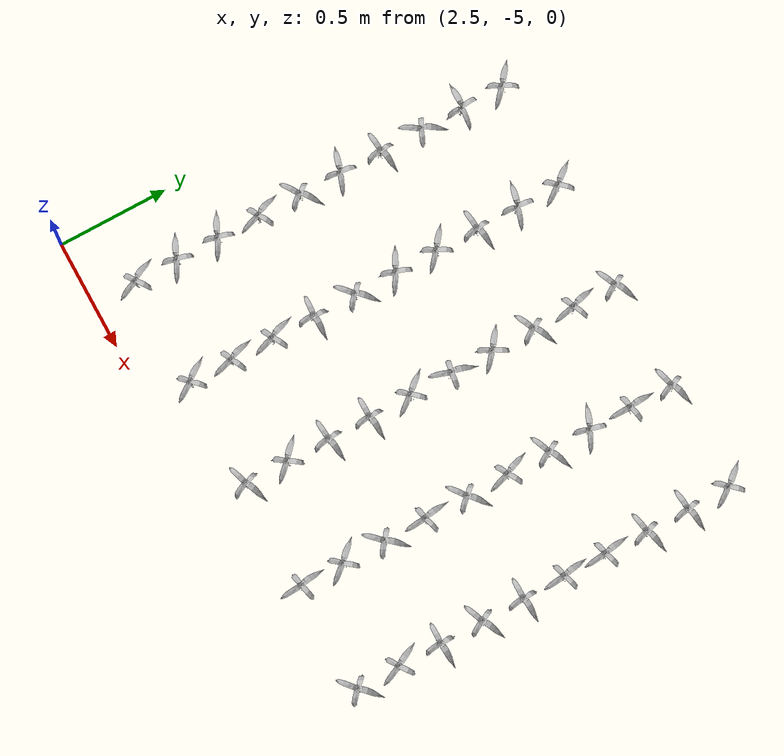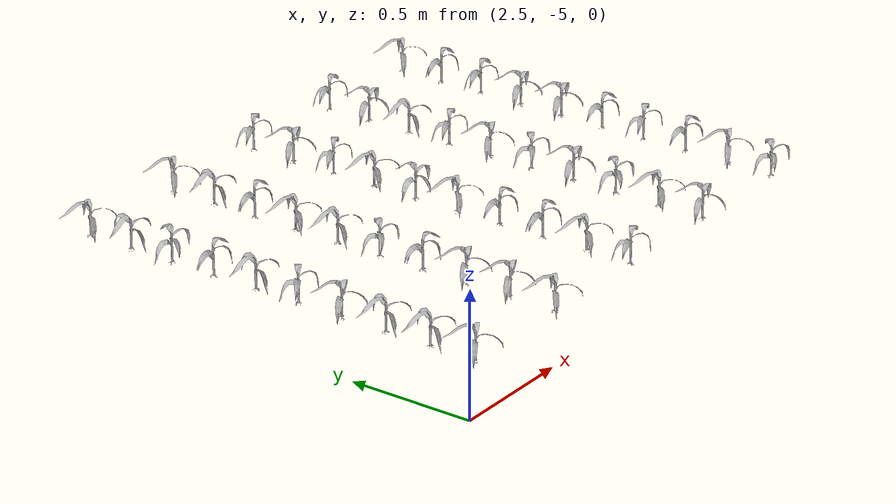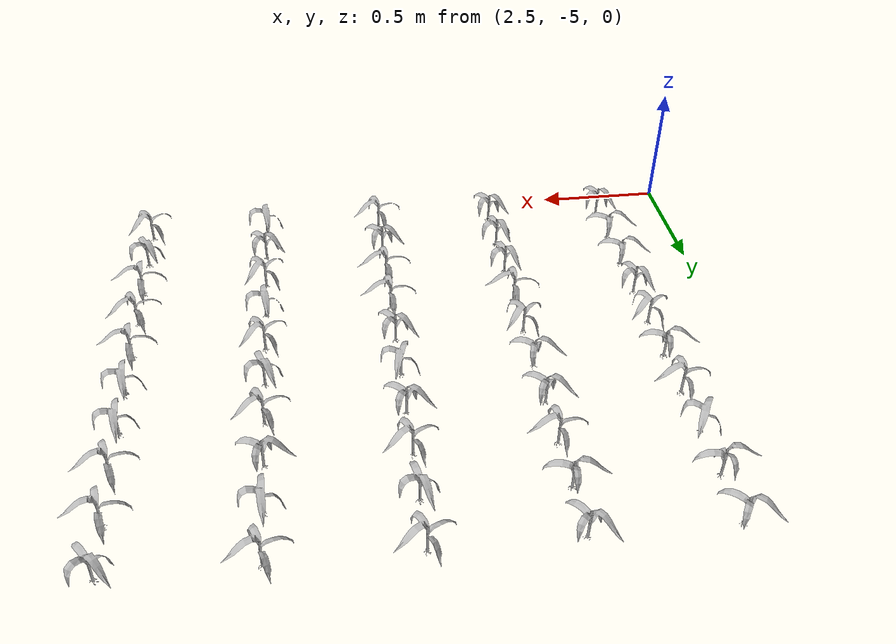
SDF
<sdf version="1.7">
 <world name="default">
  <model name="maize_2.816066532335432_-4.8">
   <static>1</static>
   <link name="link">
    <inertial>
     <mass>0.2</mass>
     <inertia>
      <ixx>0.166667</ixx>
      <ixy>0</ixy>
      <ixz>0</ixz>
      <iyy>0.166667</iyy>
      <iyz>0</iyz>
      <izz>0.166667</izz>
     </inertia>
    </inertial>
    <collision name="collision">
     <geometry><mesh><uri>model://corn_3/meshes/corn.dae</uri><scale>0.25 0.25 0.25</scale></mesh></geometry>
     <surface>
      <friction><ode><mu>0</mu><mu2>0</mu2></ode></friction>
      <contact><ode><kp>0</kp><kd>0</kd><max_vel>0</max_vel><min_depth>0.002</min_depth></ode></contact>
     </surface>
    </collision>
    <visual name="visual">
     <geometry><mesh><uri>model://corn_3/meshes/corn.dae</uri><scale>0.25 0.25 0.25</scale></mesh></geometry>
    </visual>
    <velocity_decay><linear>0</linear><angular>0</angular></velocity_decay>
   </link>
   <pose>2.81607 -4.8 0.05 0 -0 2.08674</pose>
  </model>
  <model name="maize_2.816066532335432_-4.6049999999999995">
   <static>1</static>
   <link name="link">
    <inertial>
     <mass>0.2</mass>
     <inertia>
      <ixx>0.166667</ixx>
      <ixy>0</ixy>
      <ixz>0</ixz>
      <iyy>0.166667</iyy>
      <iyz>0</iyz>
      <izz>0.166667</izz>
     </inertia>
    </inertial>
    <collision name="collision">
     <geometry><mesh><uri>model://corn_3/meshes/corn.dae</uri><scale>0.25 0.25 0.25</scale></mesh></geometry>
     <surface>
      <friction><ode><mu>0</mu><mu2>0</mu2></ode></friction>
      <contact><ode><kp>0</kp><kd>0</kd><max_vel>0</max_vel><min_depth>0.002</min_depth></ode></contact>
     </surface>
    </collision>
    <visual name="visual">
     <geometry><mesh><uri>model://corn_3/meshes/corn.dae</uri><scale>0.25 0.25 0.25</scale></mesh></geometry>
    </visual>
    <velocity_decay><linear>0</linear><angular>0</angular></velocity_decay>
   </link>
   <pose>2.81607 -4.605 0.05 0 -0 2.75773</pose>
  </model>
  <model name="maize_2.816066532335432_-4.41">
   <static>1</static>
   <link name="link">
    <inertial>
     <mass>0.2</mass>
     <inertia>
      <ixx>0.166667</ixx>
      <ixy>0</ixy>
      <ixz>0</ixz>
      <iyy>0.166667</iyy>
      <iyz>0</iyz>
      <izz>0.166667</izz>
     </inertia>
    </inertial>
    <collision name="collision">
     <geometry><mesh><uri>model://corn_3/meshes/corn.dae</uri><scale>0.25 0.25 0.25</scale></mesh></geometry>
     <surface>
      <friction><ode><mu>0</mu><mu2>0</mu2></ode></friction>
      <contact><ode><kp>0</kp><kd>0</kd><max_vel>0</max_vel><min_depth>0.002</min_depth></ode></contact>
     </surface>
    </collision>
    <visual name="visual">
     <geometry><mesh><uri>model://corn_3/meshes/corn.dae</uri><scale>0.25 0.25 0.25</scale></mesh></geometry>
    </visual>
    <velocity_decay><linear>0</linear><angular>0</angular></velocity_decay>
   </link>
   <pose>2.81607 -4.41 0.05 0 -0 2.74341</pose>
  </model>
  <model name="maize_2.816066532335432_-4.215">
   <static>1</static>
   <link name="link">
    <inertial>
     <mass>0.2</mass>
     <inertia>
      <ixx>0.166667</ixx>
      <ixy>0</ixy>
      <ixz>0</ixz>
      <iyy>0.166667</iyy>
      <iyz>0</iyz>
      <izz>0.166667</izz>
     </inertia>
    </inertial>
    <collision name="collision">
     <geometry><mesh><uri>model://corn_3/meshes/corn.dae</uri><scale>0.25 0.25 0.25</scale></mesh></geometry>
     <surface>
      <friction><ode><mu>0</mu><mu2>0</mu2></ode></friction>
      <contact><ode><kp>0</kp><kd>0</kd><max_vel>0</max_vel><min_depth>0.002</min_depth></ode></contact>
     </surface>
    </collision>
    <visual name="visual">
     <geometry><mesh><uri>model://corn_3/meshes/corn.dae</uri><scale>0.25 0.25 0.25</scale></mesh></geometry>
    </visual>
    <velocity_decay><linear>0</linear><angular>0</angular></velocity_decay>
   </link>
   <pose>2.81607 -4.215 0.05 0 -0 1.98575</pose>
  </model>
  <model name="maize_2.816066532335432_-4.02">
   <static>1</static>
   <link name="link">
    <inertial>
     <mass>0.2</mass>
     <inertia>
      <ixx>0.166667</ixx>
      <ixy>0</ixy>
      <ixz>0</ixz>
      <iyy>0.166667</iyy>
      <iyz>0</iyz>
      <izz>0.166667</izz>
     </inertia>
    </inertial>
    <collision name="collision">
     <geometry><mesh><uri>model://corn_3/meshes/corn.dae</uri><scale>0.25 0.25 0.25</scale></mesh></geometry>
     <surface>
      <friction><ode><mu>0</mu><mu2>0</mu2></ode></friction>
      <contact><ode><kp>0</kp><kd>0</kd><max_vel>0</max_vel><min_depth>0.002</min_depth></ode></contact>
     </surface>
    </collision>
    <visual name="visual">
     <geometry><mesh><uri>model://corn_3/meshes/corn.dae</uri><scale>0.25 0.25 0.25</scale></mesh></geometry>
    </visual>
    <velocity_decay><linear>0</linear><angular>0</angular></velocity_decay>
   </link>
   <pose>2.81607 -4.02 0.05 0 -0 0.686154</pose>
  </model>
  <model name="maize_2.816066532335432_-3.8249999999999997">
   <static>1</static>
   <link name="link">
    <inertial>
     <mass>0.2</mass>
     <inertia>
      <ixx>0.166667</ixx>
      <ixy>0</ixy>
      <ixz>0</ixz>
      <iyy>0.166667</iyy>
      <iyz>0</iyz>
      <izz>0.166667</izz>
     </inertia>
    </inertial>
    <collision name="collision">
     <geometry><mesh><uri>model://corn_3/meshes/corn.dae</uri><scale>0.25 0.25 0.25</scale></mesh></geometry>
     <surface>
      <friction><ode><mu>0</mu><mu2>0</mu2></ode></friction>
      <contact><ode><kp>0</kp><kd>0</kd><max_vel>0</max_vel><min_depth>0.002</min_depth></ode></contact>
     </surface>
    </collision>
    <visual name="visual">
     <geometry><mesh><uri>model://corn_3/meshes/corn.dae</uri><scale>0.25 0.25 0.25</scale></mesh></geometry>
    </visual>
    <velocity_decay><linear>0</linear><angular>0</angular></velocity_decay>
   </link>
   <pose>2.81607 -3.825 0.05 0 -0 2.88221</pose>
  </model>
  <model name="maize_2.816066532335432_-3.63">
   <static>1</static>
   <link name="link">
    <inertial>
     <mass>0.2</mass>
     <inertia>
      <ixx>0.166667</ixx>
      <ixy>0</ixy>
      <ixz>0</ixz>
      <iyy>0.166667</iyy>
      <iyz>0</iyz>
      <izz>0.166667</izz>
     </inertia>
    </inertial>
    <collision name="collision">
     <geometry><mesh><uri>model://corn_3/meshes/corn.dae</uri><scale>0.25 0.25 0.25</scale></mesh></geometry>
     <surface>
      <friction><ode><mu>0</mu><mu2>0</mu2></ode></friction>
      <contact><ode><kp>0</kp><kd>0</kd><max_vel>0</max_vel><min_depth>0.002</min_depth></ode></contact>
     </surface>
    </collision>
    <visual name="visual">
     <geometry><mesh><uri>model://corn_3/meshes/corn.dae</uri><scale>0.25 0.25 0.25</scale></mesh></geometry>
    </visual>
    <velocity_decay><linear>0</linear><angular>0</angular></velocity_decay>
   </link>
   <pose>2.81607 -3.63 0.05 0 -0 0.198833</pose>
  </model>
  <model name="maize_2.816066532335432_-3.4349999999999996">
   <static>1</static>
   <link name="link">
    <inertial>
     <mass>0.2</mass>
     <inertia>
      <ixx>0.166667</ixx>
      <ixy>0</ixy>
      <ixz>0</ixz>
      <iyy>0.166667</iyy>
      <iyz>0</iyz>
      <izz>0.166667</izz>
     </inertia>
    </inertial>
    <collision name="collision">
     <geometry><mesh><uri>model://corn_3/meshes/corn.dae</uri><scale>0.25 0.25 0.25</scale></mesh></geometry>
     <surface>
      <friction><ode><mu>0</mu><mu2>0</mu2></ode></friction>
      <contact><ode><kp>0</kp><kd>0</kd><max_vel>0</max_vel><min_depth>0.002</min_depth></ode></contact>
     </surface>
    </collision>
    <visual name="visual">
     <geometry><mesh><uri>model://corn_3/meshes/corn.dae</uri><scale>0.25 0.25 0.25</scale></mesh></geometry>
    </visual>
    <velocity_decay><linear>0</linear><angular>0</angular></velocity_decay>
   </link>
   <pose>2.81607 -3.435 0.05 0 -0 1.08971</pose>
  </model>
  <model name="maize_2.816066532335432_-3.2399999999999998">
   <static>1</static>
   <link name="link">
    <inertial>
     <mass>0.2</mass>
     <inertia>
      <ixx>0.166667</ixx>
      <ixy>0</ixy>
      <ixz>0</ixz>
      <iyy>0.166667</iyy>
      <iyz>0</iyz>
      <izz>0.166667</izz>
     </inertia>
    </inertial>
    <collision name="collision">
     <geometry><mesh><uri>model://corn_3/meshes/corn.dae</uri><scale>0.25 0.25 0.25</scale></mesh></geometry>
     <surface>
      <friction><ode><mu>0</mu><mu2>0</mu2></ode></friction>
      <contact><ode><kp>0</kp><kd>0</kd><max_vel>0</max_vel><min_depth>0.002</min_depth></ode></contact>
     </surface>
    </collision>
    <visual name="visual">
     <geometry><mesh><uri>model://corn_3/meshes/corn.dae</uri><scale>0.25 0.25 0.25</scale></mesh></geometry>
    </visual>
    <velocity_decay><linear>0</linear><angular>0</angular></velocity_decay>
   </link>
   <pose>2.81607 -3.24 0.05 0 -0 3.12822</pose>
  </model>
  <model name="maize_2.816066532335432_-3.045">
   <static>1</static>
   <link name="link">
    <inertial>
     <mass>0.2</mass>
     <inertia>
      <ixx>0.166667</ixx>
      <ixy>0</ixy>
      <ixz>0</ixz>
      <iyy>0.166667</iyy>
      <iyz>0</iyz>
      <izz>0.166667</izz>
     </inertia>
    </inertial>
    <collision name="collision">
     <geometry><mesh><uri>model://corn_3/meshes/corn.dae</uri><scale>0.25 0.25 0.25</scale></mesh></geometry>
     <surface>
      <friction><ode><mu>0</mu><mu2>0</mu2></ode></friction>
      <contact><ode><kp>0</kp><kd>0</kd><max_vel>0</max_vel><min_depth>0.002</min_depth></ode></contact>
     </surface>
    </collision>
    <visual name="visual">
     <geometry><mesh><uri>model://corn_3/meshes/corn.dae</uri><scale>0.25 0.25 0.25</scale></mesh></geometry>
    </visual>
    <velocity_decay><linear>0</linear><angular>0</angular></velocity_decay>
   </link>
   <pose>2.81607 -3.045 0.05 0 -0 2.49218</pose>
  </model>
  <model name="maize_3.304538114598593_-4.8">
   <static>1</static>
   <link name="link">
    <inertial>
     <mass>0.2</mass>
     <inertia>
      <ixx>0.166667</ixx>
      <ixy>0</ixy>
      <ixz>0</ixz>
      <iyy>0.166667</iyy>
      <iyz>0</iyz>
      <izz>0.166667</izz>
     </inertia>
    </inertial>
    <collision name="collision">
     <geometry><mesh><uri>model://corn_3/meshes/corn.dae</uri><scale>0.25 0.25 0.25</scale></mesh></geometry>
     <surface>
      <friction><ode><mu>0</mu><mu2>0</mu2></ode></friction>
      <contact><ode><kp>0</kp><kd>0</kd><max_vel>0</max_vel><min_depth>0.002</min_depth></ode></contact>
     </surface>
    </collision>
    <visual name="visual">
     <geometry><mesh><uri>model://corn_3/meshes/corn.dae</uri><scale>0.25 0.25 0.25</scale></mesh></geometry>
    </visual>
    <velocity_decay><linear>0</linear><angular>0</angular></velocity_decay>
   </link>
   <pose>3.30454 -4.8 0.05 0 -0 2.25015</pose>
  </model>
  <model name="maize_3.304538114598593_-4.6049999999999995">
   <static>1</static>
   <link name="link">
    <inertial>
     <mass>0.2</mass>
     <inertia>
      <ixx>0.166667</ixx>
      <ixy>0</ixy>
      <ixz>0</ixz>
      <iyy>0.166667</iyy>
      <iyz>0</iyz>
      <izz>0.166667</izz>
     </inertia>
    </inertial>
    <collision name="collision">
     <geometry><mesh><uri>model://corn_3/meshes/corn.dae</uri><scale>0.25 0.25 0.25</scale></mesh></geometry>
     <surface>
      <friction><ode><mu>0</mu><mu2>0</mu2></ode></friction>
      <contact><ode><kp>0</kp><kd>0</kd><max_vel>0</max_vel><min_depth>0.002</min_depth></ode></contact>
     </surface>
    </collision>
    <visual name="visual">
     <geometry><mesh><uri>model://corn_3/meshes/corn.dae</uri><scale>0.25 0.25 0.25</scale></mesh></geometry>
    </visual>
    <velocity_decay><linear>0</linear><angular>0</angular></velocity_decay>
   </link>
   <pose>3.30454 -4.605 0.05 0 -0 1.93192</pose>
  </model>
  <model name="maize_3.304538114598593_-4.41">
   <static>1</static>
   <link name="link">
    <inertial>
     <mass>0.2</mass>
     <inertia>
      <ixx>0.166667</ixx>
      <ixy>0</ixy>
      <ixz>0</ixz>
      <iyy>0.166667</iyy>
      <iyz>0</iyz>
      <izz>0.166667</izz>
     </inertia>
    </inertial>
    <collision name="collision">
     <geometry><mesh><uri>model://corn_3/meshes/corn.dae</uri><scale>0.25 0.25 0.25</scale></mesh></geometry>
     <surface>
      <friction><ode><mu>0</mu><mu2>0</mu2></ode></friction>
      <contact><ode><kp>0</kp><kd>0</kd><max_vel>0</max_vel><min_depth>0.002</min_depth></ode></contact>
     </surface>
    </collision>
    <visual name="visual">
     <geometry><mesh><uri>model://corn_3/meshes/corn.dae</uri><scale>0.25 0.25 0.25</scale></mesh></geometry>
    </visual>
    <velocity_decay><linear>0</linear><angular>0</angular></velocity_decay>
   </link>
   <pose>3.30454 -4.41 0.05 0 -0 1.9743</pose>
  </model>
  <model name="maize_3.304538114598593_-4.215">
   <static>1</static>
   <link name="link">
    <inertial>
     <mass>0.2</mass>
     <inertia>
      <ixx>0.166667</ixx>
      <ixy>0</ixy>
      <ixz>0</ixz>
      <iyy>0.166667</iyy>
      <iyz>0</iyz>
      <izz>0.166667</izz>
     </inertia>
    </inertial>
    <collision name="collision">
     <geometry><mesh><uri>model://corn_3/meshes/corn.dae</uri><scale>0.25 0.25 0.25</scale></mesh></geometry>
     <surface>
      <friction><ode><mu>0</mu><mu2>0</mu2></ode></friction>
      <contact><ode><kp>0</kp><kd>0</kd><max_vel>0</max_vel><min_depth>0.002</min_depth></ode></contact>
     </surface>
    </collision>
    <visual name="visual">
     <geometry><mesh><uri>model://corn_3/meshes/corn.dae</uri><scale>0.25 0.25 0.25</scale></mesh></geometry>
    </visual>
    <velocity_decay><linear>0</linear><angular>0</angular></velocity_decay>
   </link>
   <pose>3.30454 -4.215 0.05 0 -0 0.033462</pose>
  </model>
  <model name="maize_3.304538114598593_-4.02">
   <static>1</static>
   <link name="link">
    <inertial>
     <mass>0.2</mass>
     <inertia>
      <ixx>0.166667</ixx>
      <ixy>0</ixy>
      <ixz>0</ixz>
      <iyy>0.166667</iyy>
      <iyz>0</iyz>
      <izz>0.166667</izz>
     </inertia>
    </inertial>
    <collision name="collision">
     <geometry><mesh><uri>model://corn_3/meshes/corn.dae</uri><scale>0.25 0.25 0.25</scale></mesh></geometry>
     <surface>
      <friction><ode><mu>0</mu><mu2>0</mu2></ode></friction>
      <contact><ode><kp>0</kp><kd>0</kd><max_vel>0</max_vel><min_depth>0.002</min_depth></ode></contact>
     </surface>
    </collision>
    <visual name="visual">
     <geometry><mesh><uri>model://corn_3/meshes/corn.dae</uri><scale>0.25 0.25 0.25</scale></mesh></geometry>
    </visual>
    <velocity_decay><linear>0</linear><angular>0</angular></velocity_decay>
   </link>
   <pose>3.30454 -4.02 0.05 0 -0 0.816923</pose>
  </model>
  <model name="maize_3.304538114598593_-3.8249999999999997">
   <static>1</static>
   <link name="link">
    <inertial>
     <mass>0.2</mass>
     <inertia>
      <ixx>0.166667</ixx>
      <ixy>0</ixy>
      <ixz>0</ixz>
      <iyy>0.166667</iyy>
      <iyz>0</iyz>
      <izz>0.166667</izz>
     </inertia>
    </inertial>
    <collision name="collision">
     <geometry><mesh><uri>model://corn_3/meshes/corn.dae</uri><scale>0.25 0.25 0.25</scale></mesh></geometry>
     <surface>
      <friction><ode><mu>0</mu><mu2>0</mu2></ode></friction>
      <contact><ode><kp>0</kp><kd>0</kd><max_vel>0</max_vel><min_depth>0.002</min_depth></ode></contact>
     </surface>
    </collision>
    <visual name="visual">
     <geometry><mesh><uri>model://corn_3/meshes/corn.dae</uri><scale>0.25 0.25 0.25</scale></mesh></geometry>
    </visual>
    <velocity_decay><linear>0</linear><angular>0</angular></velocity_decay>
   </link>
   <pose>3.30454 -3.825 0.05 0 -0 2.69588</pose>
  </model>
  <model name="maize_3.304538114598593_-3.63">
   <static>1</static>
   <link name="link">
    <inertial>
     <mass>0.2</mass>
     <inertia>
      <ixx>0.166667</ixx>
      <ixy>0</ixy>
      <ixz>0</ixz>
      <iyy>0.166667</iyy>
      <iyz>0</iyz>
      <izz>0.166667</izz>
     </inertia>
    </inertial>
    <collision name="collision">
     <geometry><mesh><uri>model://corn_3/meshes/corn.dae</uri><scale>0.25 0.25 0.25</scale></mesh></geometry>
     <surface>
      <friction><ode><mu>0</mu><mu2>0</mu2></ode></friction>
      <contact><ode><kp>0</kp><kd>0</kd><max_vel>0</max_vel><min_depth>0.002</min_depth></ode></contact>
     </surface>
    </collision>
    <visual name="visual">
     <geometry><mesh><uri>model://corn_3/meshes/corn.dae</uri><scale>0.25 0.25 0.25</scale></mesh></geometry>
    </visual>
    <velocity_decay><linear>0</linear><angular>0</angular></velocity_decay>
   </link>
   <pose>3.30454 -3.63 0.05 0 -0 2.51524</pose>
  </model>
  <model name="maize_3.304538114598593_-3.4349999999999996">
   <static>1</static>
   <link name="link">
    <inertial>
     <mass>0.2</mass>
     <inertia>
      <ixx>0.166667</ixx>
      <ixy>0</ixy>
      <ixz>0</ixz>
      <iyy>0.166667</iyy>
      <iyz>0</iyz>
      <izz>0.166667</izz>
     </inertia>
    </inertial>
    <collision name="collision">
     <geometry><mesh><uri>model://corn_3/meshes/corn.dae</uri><scale>0.25 0.25 0.25</scale></mesh></geometry>
     <surface>
      <friction><ode><mu>0</mu><mu2>0</mu2></ode></friction>
      <contact><ode><kp>0</kp><kd>0</kd><max_vel>0</max_vel><min_depth>0.002</min_depth></ode></contact>
     </surface>
    </collision>
    <visual name="visual">
     <geometry><mesh><uri>model://corn_3/meshes/corn.dae</uri><scale>0.25 0.25 0.25</scale></mesh></geometry>
    </visual>
    <velocity_decay><linear>0</linear><angular>0</angular></velocity_decay>
   </link>
   <pose>3.30454 -3.435 0.05 0 -0 0.212777</pose>
  </model>
  <model name="maize_3.304538114598593_-3.2399999999999998">
   <static>1</static>
   <link name="link">
    <inertial>
     <mass>0.2</mass>
     <inertia>
      <ixx>0.166667</ixx>
      <ixy>0</ixy>
      <ixz>0</ixz>
      <iyy>0.166667</iyy>
      <iyz>0</iyz>
      <izz>0.166667</izz>
     </inertia>
    </inertial>
    <collision name="collision">
     <geometry><mesh><uri>model://corn_3/meshes/corn.dae</uri><scale>0.25 0.25 0.25</scale></mesh></geometry>
     <surface>
      <friction><ode><mu>0</mu><mu2>0</mu2></ode></friction>
      <contact><ode><kp>0</kp><kd>0</kd><max_vel>0</max_vel><min_depth>0.002</min_depth></ode></contact>
     </surface>
    </collision>
    <visual name="visual">
     <geometry><mesh><uri>model://corn_3/meshes/corn.dae</uri><scale>0.25 0.25 0.25</scale></mesh></geometry>
    </visual>
    <velocity_decay><linear>0</linear><angular>0</angular></velocity_decay>
   </link>
   <pose>3.30454 -3.24 0.05 0 -0 2.93704</pose>
  </model>
  <model name="maize_3.304538114598593_-3.045">
   <static>1</static>
   <link name="link">
    <inertial>
     <mass>0.2</mass>
     <inertia>
      <ixx>0.166667</ixx>
      <ixy>0</ixy>
      <ixz>0</ixz>
      <iyy>0.166667</iyy>
      <iyz>0</iyz>
      <izz>0.166667</izz>
     </inertia>
    </inertial>
    <collision name="collision">
     <geometry><mesh><uri>model://corn_3/meshes/corn.dae</uri><scale>0.25 0.25 0.25</scale></mesh></geometry>
     <surface>
      <friction><ode><mu>0</mu><mu2>0</mu2></ode></friction>
      <contact><ode><kp>0</kp><kd>0</kd><max_vel>0</max_vel><min_depth>0.002</min_depth></ode></contact>
     </surface>
    </collision>
    <visual name="visual">
     <geometry><mesh><uri>model://corn_3/meshes/corn.dae</uri><scale>0.25 0.25 0.25</scale></mesh></geometry>
    </visual>
    <velocity_decay><linear>0</linear><angular>0</angular></velocity_decay>
   </link>
   <pose>3.30454 -3.045 0.05 0 -0 2.28434</pose>
  </model>
  <model name="maize_3.792272817950934_-4.8">
   <static>1</static>
   <link name="link">
    <inertial>
     <mass>0.2</mass>
     <inertia>
      <ixx>0.166667</ixx>
      <ixy>0</ixy>
      <ixz>0</ixz>
      <iyy>0.166667</iyy>
      <iyz>0</iyz>
      <izz>0.166667</izz>
     </inertia>
    </inertial>
    <collision name="collision">
     <geometry><mesh><uri>model://corn_3/meshes/corn.dae</uri><scale>0.25 0.25 0.25</scale></mesh></geometry>
     <surface>
      <friction><ode><mu>0</mu><mu2>0</mu2></ode></friction>
      <contact><ode><kp>0</kp><kd>0</kd><max_vel>0</max_vel><min_depth>0.002</min_depth></ode></contact>
     </surface>
    </collision>
    <visual name="visual">
     <geometry><mesh><uri>model://corn_3/meshes/corn.dae</uri><scale>0.25 0.25 0.25</scale></mesh></geometry>
    </visual>
    <velocity_decay><linear>0</linear><angular>0</angular></velocity_decay>
   </link>
   <pose>3.79227 -4.8 0.05 0 -0 0.406199</pose>
  </model>
  <model name="maize_3.792272817950934_-4.6049999999999995">
   <static>1</static>
   <link name="link">
    <inertial>
     <mass>0.2</mass>
     <inertia>
      <ixx>0.166667</ixx>
      <ixy>0</ixy>
      <ixz>0</ixz>
      <iyy>0.166667</iyy>
      <iyz>0</iyz>
      <izz>0.166667</izz>
     </inertia>
    </inertial>
    <collision name="collision">
     <geometry><mesh><uri>model://corn_3/meshes/corn.dae</uri><scale>0.25 0.25 0.25</scale></mesh></geometry>
     <surface>
      <friction><ode><mu>0</mu><mu2>0</mu2></ode></friction>
      <contact><ode><kp>0</kp><kd>0</kd><max_vel>0</max_vel><min_depth>0.002</min_depth></ode></contact>
     </surface>
    </collision>
    <visual name="visual">
     <geometry><mesh><uri>model://corn_3/meshes/corn.dae</uri><scale>0.25 0.25 0.25</scale></mesh></geometry>
    </visual>
    <velocity_decay><linear>0</linear><angular>0</angular></velocity_decay>
   </link>
   <pose>3.79227 -4.605 0.05 0 -0 2.42902</pose>
  </model>
  <model name="maize_3.792272817950934_-4.41">
   <static>1</static>
   <link name="link">
    <inertial>
     <mass>0.2</mass>
     <inertia>
      <ixx>0.166667</ixx>
      <ixy>0</ixy>
      <ixz>0</ixz>
      <iyy>0.166667</iyy>
      <iyz>0</iyz>
      <izz>0.166667</izz>
     </inertia>
    </inertial>
    <collision name="collision">
     <geometry><mesh><uri>model://corn_3/meshes/corn.dae</uri><scale>0.25 0.25 0.25</scale></mesh></geometry>
     <surface>
      <friction><ode><mu>0</mu><mu2>0</mu2></ode></friction>
      <contact><ode><kp>0</kp><kd>0</kd><max_vel>0</max_vel><min_depth>0.002</min_depth></ode></contact>
     </surface>
    </collision>
    <visual name="visual">
     <geometry><mesh><uri>model://corn_3/meshes/corn.dae</uri><scale>0.25 0.25 0.25</scale></mesh></geometry>
    </visual>
    <velocity_decay><linear>0</linear><angular>0</angular></velocity_decay>
   </link>
   <pose>3.79227 -4.41 0.05 0 -0 0.1811</pose>
  </model>
  <model name="maize_3.792272817950934_-4.215">
   <static>1</static>
   <link name="link">
    <inertial>
     <mass>0.2</mass>
     <inertia>
      <ixx>0.166667</ixx>
      <ixy>0</ixy>
      <ixz>0</ixz>
      <iyy>0.166667</iyy>
      <iyz>0</iyz>
      <izz>0.166667</izz>
     </inertia>
    </inertial>
    <collision name="collision">
     <geometry><mesh><uri>model://corn_3/meshes/corn.dae</uri><scale>0.25 0.25 0.25</scale></mesh></geometry>
     <surface>
      <friction><ode><mu>0</mu><mu2>0</mu2></ode></friction>
      <contact><ode><kp>0</kp><kd>0</kd><max_vel>0</max_vel><min_depth>0.002</min_depth></ode></contact>
     </surface>
    </collision>
    <visual name="visual">
     <geometry><mesh><uri>model://corn_3/meshes/corn.dae</uri><scale>0.25 0.25 0.25</scale></mesh></geometry>
    </visual>
    <velocity_decay><linear>0</linear><angular>0</angular></velocity_decay>
   </link>
   <pose>3.79227 -4.215 0.05 0 -0 0.120847</pose>
  </model>
  <model name="maize_3.792272817950934_-4.02">
   <static>1</static>
   <link name="link">
    <inertial>
     <mass>0.2</mass>
     <inertia>
      <ixx>0.166667</ixx>
      <ixy>0</ixy>
      <ixz>0</ixz>
      <iyy>0.166667</iyy>
      <iyz>0</iyz>
      <izz>0.166667</izz>
     </inertia>
    </inertial>
    <collision name="collision">
     <geometry><mesh><uri>model://corn_3/meshes/corn.dae</uri><scale>0.25 0.25 0.25</scale></mesh></geometry>
     <surface>
      <friction><ode><mu>0</mu><mu2>0</mu2></ode></friction>
      <contact><ode><kp>0</kp><kd>0</kd><max_vel>0</max_vel><min_depth>0.002</min_depth></ode></contact>
     </surface>
    </collision>
    <visual name="visual">
     <geometry><mesh><uri>model://corn_3/meshes/corn.dae</uri><scale>0.25 0.25 0.25</scale></mesh></geometry>
    </visual>
    <velocity_decay><linear>0</linear><angular>0</angular></velocity_decay>
   </link>
   <pose>3.79227 -4.02 0.05 0 -0 2.31945</pose>
  </model>
  <model name="maize_3.792272817950934_-3.8249999999999997">
   <static>1</static>
   <link name="link">
    <inertial>
     <mass>0.2</mass>
     <inertia>
      <ixx>0.166667</ixx>
      <ixy>0</ixy>
      <ixz>0</ixz>
      <iyy>0.166667</iyy>
      <iyz>0</iyz>
      <izz>0.166667</izz>
     </inertia>
    </inertial>
    <collision name="collision">
     <geometry><mesh><uri>model://corn_3/meshes/corn.dae</uri><scale>0.25 0.25 0.25</scale></mesh></geometry>
     <surface>
      <friction><ode><mu>0</mu><mu2>0</mu2></ode></friction>
      <contact><ode><kp>0</kp><kd>0</kd><max_vel>0</max_vel><min_depth>0.002</min_depth></ode></contact>
     </surface>
    </collision>
    <visual name="visual">
     <geometry><mesh><uri>model://corn_3/meshes/corn.dae</uri><scale>0.25 0.25 0.25</scale></mesh></geometry>
    </visual>
    <velocity_decay><linear>0</linear><angular>0</angular></velocity_decay>
   </link>
   <pose>3.79227 -3.825 0.05 0 -0 1.34876</pose>
  </model>
  <model name="maize_3.792272817950934_-3.63">
   <static>1</static>
   <link name="link">
    <inertial>
     <mass>0.2</mass>
     <inertia>
      <ixx>0.166667</ixx>
      <ixy>0</ixy>
      <ixz>0</ixz>
      <iyy>0.166667</iyy>
      <iyz>0</iyz>
      <izz>0.166667</izz>
     </inertia>
    </inertial>
    <collision name="collision">
     <geometry><mesh><uri>model://corn_3/meshes/corn.dae</uri><scale>0.25 0.25 0.25</scale></mesh></geometry>
     <surface>
      <friction><ode><mu>0</mu><mu2>0</mu2></ode></friction>
      <contact><ode><kp>0</kp><kd>0</kd><max_vel>0</max_vel><min_depth>0.002</min_depth></ode></contact>
     </surface>
    </collision>
    <visual name="visual">
     <geometry><mesh><uri>model://corn_3/meshes/corn.dae</uri><scale>0.25 0.25 0.25</scale></mesh></geometry>
    </visual>
    <velocity_decay><linear>0</linear><angular>0</angular></velocity_decay>
   </link>
   <pose>3.79227 -3.63 0.05 0 -0 2.52823</pose>
  </model>
  <model name="maize_3.792272817950934_-3.4349999999999996">
   <static>1</static>
   <link name="link">
    <inertial>
     <mass>0.2</mass>
     <inertia>
      <ixx>0.166667</ixx>
      <ixy>0</ixy>
      <ixz>0</ixz>
      <iyy>0.166667</iyy>
      <iyz>0</iyz>
      <izz>0.166667</izz>
     </inertia>
    </inertial>
    <collision name="collision">
     <geometry><mesh><uri>model://corn_3/meshes/corn.dae</uri><scale>0.25 0.25 0.25</scale></mesh></geometry>
     <surface>
      <friction><ode><mu>0</mu><mu2>0</mu2></ode></friction>
      <contact><ode><kp>0</kp><kd>0</kd><max_vel>0</max_vel><min_depth>0.002</min_depth></ode></contact>
     </surface>
    </collision>
    <visual name="visual">
     <geometry><mesh><uri>model://corn_3/meshes/corn.dae</uri><scale>0.25 0.25 0.25</scale></mesh></geometry>
    </visual>
    <velocity_decay><linear>0</linear><angular>0</angular></velocity_decay>
   </link>
   <pose>3.79227 -3.435 0.05 0 -0 0.532904</pose>
  </model>
  <model name="maize_3.792272817950934_-3.2399999999999998">
   <static>1</static>
   <link name="link">
    <inertial>
     <mass>0.2</mass>
     <inertia>
      <ixx>0.166667</ixx>
      <ixy>0</ixy>
      <ixz>0</ixz>
      <iyy>0.166667</iyy>
      <iyz>0</iyz>
      <izz>0.166667</izz>
     </inertia>
    </inertial>
    <collision name="collision">
     <geometry><mesh><uri>model://corn_3/meshes/corn.dae</uri><scale>0.25 0.25 0.25</scale></mesh></geometry>
     <surface>
      <friction><ode><mu>0</mu><mu2>0</mu2></ode></friction>
      <contact><ode><kp>0</kp><kd>0</kd><max_vel>0</max_vel><min_depth>0.002</min_depth></ode></contact>
     </surface>
    </collision>
    <visual name="visual">
     <geometry><mesh><uri>model://corn_3/meshes/corn.dae</uri><scale>0.25 0.25 0.25</scale></mesh></geometry>
    </visual>
    <velocity_decay><linear>0</linear><angular>0</angular></velocity_decay>
   </link>
   <pose>3.79227 -3.24 0.05 0 -0 1.87394</pose>
  </model>
  <model name="maize_3.792272817950934_-3.045">
   <static>1</static>
   <link name="link">
    <inertial>
     <mass>0.2</mass>
     <inertia>
      <ixx>0.166667</ixx>
      <ixy>0</ixy>
      <ixz>0</ixz>
      <iyy>0.166667</iyy>
      <iyz>0</iyz>
      <izz>0.166667</izz>
     </inertia>
    </inertial>
    <collision name="collision">
     <geometry><mesh><uri>model://corn_3/meshes/corn.dae</uri><scale>0.25 0.25 0.25</scale></mesh></geometry>
     <surface>
      <friction><ode><mu>0</mu><mu2>0</mu2></ode></friction>
      <contact><ode><kp>0</kp><kd>0</kd><max_vel>0</max_vel><min_depth>0.002</min_depth></ode></contact>
     </surface>
    </collision>
    <visual name="visual">
     <geometry><mesh><uri>model://corn_3/meshes/corn.dae</uri><scale>0.25 0.25 0.25</scale></mesh></geometry>
    </visual>
    <velocity_decay><linear>0</linear><angular>0</angular></velocity_decay>
   </link>
   <pose>3.79227 -3.045 0.05 0 -0 0.507188</pose>
  </model>
  <model name="maize_4.279271472945556_-4.8">
   <static>1</static>
   <link name="link">
    <inertial>
     <mass>0.2</mass>
     <inertia>
      <ixx>0.166667</ixx>
      <ixy>0</ixy>
      <ixz>0</ixz>
      <iyy>0.166667</iyy>
      <iyz>0</iyz>
      <izz>0.166667</izz>
     </inertia>
    </inertial>
    <collision name="collision">
     <geometry><mesh><uri>model://corn_3/meshes/corn.dae</uri><scale>0.25 0.25 0.25</scale></mesh></geometry>
     <surface>
      <friction><ode><mu>0</mu><mu2>0</mu2></ode></friction>
      <contact><ode><kp>0</kp><kd>0</kd><max_vel>0</max_vel><min_depth>0.002</min_depth></ode></contact>
     </surface>
    </collision>
    <visual name="visual">
     <geometry><mesh><uri>model://corn_3/meshes/corn.dae</uri><scale>0.25 0.25 0.25</scale></mesh></geometry>
    </visual>
    <velocity_decay><linear>0</linear><angular>0</angular></velocity_decay>
   </link>
   <pose>4.27927 -4.8 0.05 0 -0 1.7287</pose>
  </model>
  <model name="maize_4.279271472945556_-4.6049999999999995">
   <static>1</static>
   <link name="link">
    <inertial>
     <mass>0.2</mass>
     <inertia>
      <ixx>0.166667</ixx>
      <ixy>0</ixy>
      <ixz>0</ixz>
      <iyy>0.166667</iyy>
      <iyz>0</iyz>
      <izz>0.166667</izz>
     </inertia>
    </inertial>
    <collision name="collision">
     <geometry><mesh><uri>model://corn_3/meshes/corn.dae</uri><scale>0.25 0.25 0.25</scale></mesh></geometry>
     <surface>
      <friction><ode><mu>0</mu><mu2>0</mu2></ode></friction>
      <contact><ode><kp>0</kp><kd>0</kd><max_vel>0</max_vel><min_depth>0.002</min_depth></ode></contact>
     </surface>
    </collision>
    <visual name="visual">
     <geometry><mesh><uri>model://corn_3/meshes/corn.dae</uri><scale>0.25 0.25 0.25</scale></mesh></geometry>
    </visual>
    <velocity_decay><linear>0</linear><angular>0</angular></velocity_decay>
   </link>
   <pose>4.27927 -4.605 0.05 0 -0 2.36289</pose>
  </model>
  <model name="maize_4.279271472945556_-4.41">
   <static>1</static>
   <link name="link">
    <inertial>
     <mass>0.2</mass>
     <inertia>
      <ixx>0.166667</ixx>
      <ixy>0</ixy>
      <ixz>0</ixz>
      <iyy>0.166667</iyy>
      <iyz>0</iyz>
      <izz>0.166667</izz>
     </inertia>
    </inertial>
    <collision name="collision">
     <geometry><mesh><uri>model://corn_3/meshes/corn.dae</uri><scale>0.25 0.25 0.25</scale></mesh></geometry>
     <surface>
      <friction><ode><mu>0</mu><mu2>0</mu2></ode></friction>
      <contact><ode><kp>0</kp><kd>0</kd><max_vel>0</max_vel><min_depth>0.002</min_depth></ode></contact>
     </surface>
    </collision>
    <visual name="visual">
     <geometry><mesh><uri>model://corn_3/meshes/corn.dae</uri><scale>0.25 0.25 0.25</scale></mesh></geometry>
    </visual>
    <velocity_decay><linear>0</linear><angular>0</angular></velocity_decay>
   </link>
   <pose>4.27927 -4.41 0.05 0 -0 0.889419</pose>
  </model>
  <model name="maize_4.279271472945556_-4.215">
   <static>1</static>
   <link name="link">
    <inertial>
     <mass>0.2</mass>
     <inertia>
      <ixx>0.166667</ixx>
      <ixy>0</ixy>
      <ixz>0</ixz>
      <iyy>0.166667</iyy>
      <iyz>0</iyz>
      <izz>0.166667</izz>
     </inertia>
    </inertial>
    <collision name="collision">
     <geometry><mesh><uri>model://corn_3/meshes/corn.dae</uri><scale>0.25 0.25 0.25</scale></mesh></geometry>
     <surface>
      <friction><ode><mu>0</mu><mu2>0</mu2></ode></friction>
      <contact><ode><kp>0</kp><kd>0</kd><max_vel>0</max_vel><min_depth>0.002</min_depth></ode></contact>
     </surface>
    </collision>
    <visual name="visual">
     <geometry><mesh><uri>model://corn_3/meshes/corn.dae</uri><scale>0.25 0.25 0.25</scale></mesh></geometry>
    </visual>
    <velocity_decay><linear>0</linear><angular>0</angular></velocity_decay>
   </link>
   <pose>4.27927 -4.215 0.05 0 -0 1.7433</pose>
  </model>
  <model name="maize_4.279271472945556_-4.02">
   <static>1</static>
   <link name="link">
    <inertial>
     <mass>0.2</mass>
     <inertia>
      <ixx>0.166667</ixx>
      <ixy>0</ixy>
      <ixz>0</ixz>
      <iyy>0.166667</iyy>
      <iyz>0</iyz>
      <izz>0.166667</izz>
     </inertia>
    </inertial>
    <collision name="collision">
     <geometry><mesh><uri>model://corn_3/meshes/corn.dae</uri><scale>0.25 0.25 0.25</scale></mesh></geometry>
     <surface>
      <friction><ode><mu>0</mu><mu2>0</mu2></ode></friction>
      <contact><ode><kp>0</kp><kd>0</kd><max_vel>0</max_vel><min_depth>0.002</min_depth></ode></contact>
     </surface>
    </collision>
    <visual name="visual">
     <geometry><mesh><uri>model://corn_3/meshes/corn.dae</uri><scale>0.25 0.25 0.25</scale></mesh></geometry>
    </visual>
    <velocity_decay><linear>0</linear><angular>0</angular></velocity_decay>
   </link>
   <pose>4.27927 -4.02 0.05 0 -0 0.733715</pose>
  </model>
  <model name="maize_4.279271472945556_-3.8249999999999997">
   <static>1</static>
   <link name="link">
    <inertial>
     <mass>0.2</mass>
     <inertia>
      <ixx>0.166667</ixx>
      <ixy>0</ixy>
      <ixz>0</ixz>
      <iyy>0.166667</iyy>
      <iyz>0</iyz>
      <izz>0.166667</izz>
     </inertia>
    </inertial>
    <collision name="collision">
     <geometry><mesh><uri>model://corn_3/meshes/corn.dae</uri><scale>0.25 0.25 0.25</scale></mesh></geometry>
     <surface>
      <friction><ode><mu>0</mu><mu2>0</mu2></ode></friction>
      <contact><ode><kp>0</kp><kd>0</kd><max_vel>0</max_vel><min_depth>0.002</min_depth></ode></contact>
     </surface>
    </collision>
    <visual name="visual">
     <geometry><mesh><uri>model://corn_3/meshes/corn.dae</uri><scale>0.25 0.25 0.25</scale></mesh></geometry>
    </visual>
    <velocity_decay><linear>0</linear><angular>0</angular></velocity_decay>
   </link>
   <pose>4.27927 -3.825 0.05 0 -0 1.98843</pose>
  </model>
  <model name="maize_4.279271472945556_-3.63">
   <static>1</static>
   <link name="link">
    <inertial>
     <mass>0.2</mass>
     <inertia>
      <ixx>0.166667</ixx>
      <ixy>0</ixy>
      <ixz>0</ixz>
      <iyy>0.166667</iyy>
      <iyz>0</iyz>
      <izz>0.166667</izz>
     </inertia>
    </inertial>
    <collision name="collision">
     <geometry><mesh><uri>model://corn_3/meshes/corn.dae</uri><scale>0.25 0.25 0.25</scale></mesh></geometry>
     <surface>
      <friction><ode><mu>0</mu><mu2>0</mu2></ode></friction>
      <contact><ode><kp>0</kp><kd>0</kd><max_vel>0</max_vel><min_depth>0.002</min_depth></ode></contact>
     </surface>
    </collision>
    <visual name="visual">
     <geometry><mesh><uri>model://corn_3/meshes/corn.dae</uri><scale>0.25 0.25 0.25</scale></mesh></geometry>
    </visual>
    <velocity_decay><linear>0</linear><angular>0</angular></velocity_decay>
   </link>
   <pose>4.27927 -3.63 0.05 0 -0 0.483688</pose>
  </model>
  <model name="maize_4.279271472945556_-3.4349999999999996">
   <static>1</static>
   <link name="link">
    <inertial>
     <mass>0.2</mass>
     <inertia>
      <ixx>0.166667</ixx>
      <ixy>0</ixy>
      <ixz>0</ixz>
      <iyy>0.166667</iyy>
      <iyz>0</iyz>
      <izz>0.166667</izz>
     </inertia>
    </inertial>
    <collision name="collision">
     <geometry><mesh><uri>model://corn_3/meshes/corn.dae</uri><scale>0.25 0.25 0.25</scale></mesh></geometry>
     <surface>
      <friction><ode><mu>0</mu><mu2>0</mu2></ode></friction>
      <contact><ode><kp>0</kp><kd>0</kd><max_vel>0</max_vel><min_depth>0.002</min_depth></ode></contact>
     </surface>
    </collision>
    <visual name="visual">
     <geometry><mesh><uri>model://corn_3/meshes/corn.dae</uri><scale>0.25 0.25 0.25</scale></mesh></geometry>
    </visual>
    <velocity_decay><linear>0</linear><angular>0</angular></velocity_decay>
   </link>
   <pose>4.27927 -3.435 0.05 0 -0 2.79415</pose>
  </model>
  <model name="maize_4.279271472945556_-3.2399999999999998">
   <static>1</static>
   <link name="link">
    <inertial>
     <mass>0.2</mass>
     <inertia>
      <ixx>0.166667</ixx>
      <ixy>0</ixy>
      <ixz>0</ixz>
      <iyy>0.166667</iyy>
      <iyz>0</iyz>
      <izz>0.166667</izz>
     </inertia>
    </inertial>
    <collision name="collision">
     <geometry><mesh><uri>model://corn_3/meshes/corn.dae</uri><scale>0.25 0.25 0.25</scale></mesh></geometry>
     <surface>
      <friction><ode><mu>0</mu><mu2>0</mu2></ode></friction>
      <contact><ode><kp>0</kp><kd>0</kd><max_vel>0</max_vel><min_depth>0.002</min_depth></ode></contact>
     </surface>
    </collision>
    <visual name="visual">
     <geometry><mesh><uri>model://corn_3/meshes/corn.dae</uri><scale>0.25 0.25 0.25</scale></mesh></geometry>
    </visual>
    <velocity_decay><linear>0</linear><angular>0</angular></velocity_decay>
   </link>
   <pose>4.27927 -3.24 0.05 0 -0 1.67243</pose>
  </model>
  <model name="maize_4.279271472945556_-3.045">
   <static>1</static>
   <link name="link">
    <inertial>
     <mass>0.2</mass>
     <inertia>
      <ixx>0.166667</ixx>
      <ixy>0</ixy>
      <ixz>0</ixz>
      <iyy>0.166667</iyy>
      <iyz>0</iyz>
      <izz>0.166667</izz>
     </inertia>
    </inertial>
    <collision name="collision">
     <geometry><mesh><uri>model://corn_3/meshes/corn.dae</uri><scale>0.25 0.25 0.25</scale></mesh></geometry>
     <surface>
      <friction><ode><mu>0</mu><mu2>0</mu2></ode></friction>
      <contact><ode><kp>0</kp><kd>0</kd><max_vel>0</max_vel><min_depth>0.002</min_depth></ode></contact>
     </surface>
    </collision>
    <visual name="visual">
     <geometry><mesh><uri>model://corn_3/meshes/corn.dae</uri><scale>0.25 0.25 0.25</scale></mesh></geometry>
    </visual>
    <velocity_decay><linear>0</linear><angular>0</angular></velocity_decay>
   </link>
   <pose>4.27927 -3.045 0.05 0 -0 0.356645</pose>
  </model>
  <model name="maize_4.765534909304227_-4.8">
   <static>1</static>
   <link name="link">
    <inertial>
     <mass>0.2</mass>
     <inertia>
      <ixx>0.166667</ixx>
      <ixy>0</ixy>
      <ixz>0</ixz>
      <iyy>0.166667</iyy>
      <iyz>0</iyz>
      <izz>0.166667</izz>
     </inertia>
    </inertial>
    <collision name="collision">
     <geometry><mesh><uri>model://corn_3/meshes/corn.dae</uri><scale>0.25 0.25 0.25</scale></mesh></geometry>
     <surface>
      <friction><ode><mu>0</mu><mu2>0</mu2></ode></friction>
      <contact><ode><kp>0</kp><kd>0</kd><max_vel>0</max_vel><min_depth>0.002</min_depth></ode></contact>
     </surface>
    </collision>
    <visual name="visual">
     <geometry><mesh><uri>model://corn_3/meshes/corn.dae</uri><scale>0.25 0.25 0.25</scale></mesh></geometry>
    </visual>
    <velocity_decay><linear>0</linear><angular>0</angular></velocity_decay>
   </link>
   <pose>4.76553 -4.8 0.05 0 -0 0.794417</pose>
  </model>
  <model name="maize_4.765534909304227_-4.6049999999999995">
   <static>1</static>
   <link name="link">
    <inertial>
     <mass>0.2</mass>
     <inertia>
      <ixx>0.166667</ixx>
      <ixy>0</ixy>
      <ixz>0</ixz>
      <iyy>0.166667</iyy>
      <iyz>0</iyz>
      <izz>0.166667</izz>
     </inertia>
    </inertial>
    <collision name="collision">
     <geometry><mesh><uri>model://corn_3/meshes/corn.dae</uri><scale>0.25 0.25 0.25</scale></mesh></geometry>
     <surface>
      <friction><ode><mu>0</mu><mu2>0</mu2></ode></friction>
      <contact><ode><kp>0</kp><kd>0</kd><max_vel>0</max_vel><min_depth>0.002</min_depth></ode></contact>
     </surface>
    </collision>
    <visual name="visual">
     <geometry><mesh><uri>model://corn_3/meshes/corn.dae</uri><scale>0.25 0.25 0.25</scale></mesh></geometry>
    </visual>
    <velocity_decay><linear>0</linear><angular>0</angular></velocity_decay>
   </link>
   <pose>4.76553 -4.605 0.05 0 -0 2.09189</pose>
  </model>
  <model name="maize_4.765534909304227_-4.41">
   <static>1</static>
   <link name="link">
    <inertial>
     <mass>0.2</mass>
     <inertia>
      <ixx>0.166667</ixx>
      <ixy>0</ixy>
      <ixz>0</ixz>
      <iyy>0.166667</iyy>
      <iyz>0</iyz>
      <izz>0.166667</izz>
     </inertia>
    </inertial>
    <collision name="collision">
     <geometry><mesh><uri>model://corn_3/meshes/corn.dae</uri><scale>0.25 0.25 0.25</scale></mesh></geometry>
     <surface>
      <friction><ode><mu>0</mu><mu2>0</mu2></ode></friction>
      <contact><ode><kp>0</kp><kd>0</kd><max_vel>0</max_vel><min_depth>0.002</min_depth></ode></contact>
     </surface>
    </collision>
    <visual name="visual">
     <geometry><mesh><uri>model://corn_3/meshes/corn.dae</uri><scale>0.25 0.25 0.25</scale></mesh></geometry>
    </visual>
    <velocity_decay><linear>0</linear><angular>0</angular></velocity_decay>
   </link>
   <pose>4.76553 -4.41 0.05 0 -0 0.069784</pose>
  </model>
  <model name="maize_4.765534909304227_-4.215">
   <static>1</static>
   <link name="link">
    <inertial>
     <mass>0.2</mass>
     <inertia>
      <ixx>0.166667</ixx>
      <ixy>0</ixy>
      <ixz>0</ixz>
      <iyy>0.166667</iyy>
      <iyz>0</iyz>
      <izz>0.166667</izz>
     </inertia>
    </inertial>
    <collision name="collision">
     <geometry><mesh><uri>model://corn_3/meshes/corn.dae</uri><scale>0.25 0.25 0.25</scale></mesh></geometry>
     <surface>
      <friction><ode><mu>0</mu><mu2>0</mu2></ode></friction>
      <contact><ode><kp>0</kp><kd>0</kd><max_vel>0</max_vel><min_depth>0.002</min_depth></ode></contact>
     </surface>
    </collision>
    <visual name="visual">
     <geometry><mesh><uri>model://corn_3/meshes/corn.dae</uri><scale>0.25 0.25 0.25</scale></mesh></geometry>
    </visual>
    <velocity_decay><linear>0</linear><angular>0</angular></velocity_decay>
   </link>
   <pose>4.76553 -4.215 0.05 0 -0 0.467685</pose>
  </model>
  <model name="maize_4.765534909304227_-4.02">
   <static>1</static>
   <link name="link">
    <inertial>
     <mass>0.2</mass>
     <inertia>
      <ixx>0.166667</ixx>
      <ixy>0</ixy>
      <ixz>0</ixz>
      <iyy>0.166667</iyy>
      <iyz>0</iyz>
      <izz>0.166667</izz>
     </inertia>
    </inertial>
    <collision name="collision">
     <geometry><mesh><uri>model://corn_3/meshes/corn.dae</uri><scale>0.25 0.25 0.25</scale></mesh></geometry>
     <surface>
      <friction><ode><mu>0</mu><mu2>0</mu2></ode></friction>
      <contact><ode><kp>0</kp><kd>0</kd><max_vel>0</max_vel><min_depth>0.002</min_depth></ode></contact>
     </surface>
    </collision>
    <visual name="visual">
     <geometry><mesh><uri>model://corn_3/meshes/corn.dae</uri><scale>0.25 0.25 0.25</scale></mesh></geometry>
    </visual>
    <velocity_decay><linear>0</linear><angular>0</angular></velocity_decay>
   </link>
   <pose>4.76553 -4.02 0.05 0 -0 0.093888</pose>
  </model>
  <model name="maize_4.765534909304227_-3.8249999999999997">
   <static>1</static>
   <link name="link">
    <inertial>
     <mass>0.2</mass>
     <inertia>
      <ixx>0.166667</ixx>
      <ixy>0</ixy>
      <ixz>0</ixz>
      <iyy>0.166667</iyy>
      <iyz>0</iyz>
      <izz>0.166667</izz>
     </inertia>
    </inertial>
    <collision name="collision">
     <geometry><mesh><uri>model://corn_3/meshes/corn.dae</uri><scale>0.25 0.25 0.25</scale></mesh></geometry>
     <surface>
      <friction><ode><mu>0</mu><mu2>0</mu2></ode></friction>
      <contact><ode><kp>0</kp><kd>0</kd><max_vel>0</max_vel><min_depth>0.002</min_depth></ode></contact>
     </surface>
    </collision>
    <visual name="visual">
     <geometry><mesh><uri>model://corn_3/meshes/corn.dae</uri><scale>0.25 0.25 0.25</scale></mesh></geometry>
    </visual>
    <velocity_decay><linear>0</linear><angular>0</angular></velocity_decay>
   </link>
   <pose>4.76553 -3.825 0.05 0 -0 1.77267</pose>
  </model>
  <model name="maize_4.765534909304227_-3.63">
   <static>1</static>
   <link name="link">
    <inertial>
     <mass>0.2</mass>
     <inertia>
      <ixx>0.166667</ixx>
      <ixy>0</ixy>
      <ixz>0</ixz>
      <iyy>0.166667</iyy>
      <iyz>0</iyz>
      <izz>0.166667</izz>
     </inertia>
    </inertial>
    <collision name="collision">
     <geometry><mesh><uri>model://corn_3/meshes/corn.dae</uri><scale>0.25 0.25 0.25</scale></mesh></geometry>
     <surface>
      <friction><ode><mu>0</mu><mu2>0</mu2></ode></friction>
      <contact><ode><kp>0</kp><kd>0</kd><max_vel>0</max_vel><min_depth>0.002</min_depth></ode></contact>
     </surface>
    </collision>
    <visual name="visual">
     <geometry><mesh><uri>model://corn_3/meshes/corn.dae</uri><scale>0.25 0.25 0.25</scale></mesh></geometry>
    </visual>
    <velocity_decay><linear>0</linear><angular>0</angular></velocity_decay>
   </link>
   <pose>4.76553 -3.63 0.05 0 -0 1.76066</pose>
  </model>
  <model name="maize_4.765534909304227_-3.4349999999999996">
   <static>1</static>
   <link name="link">
    <inertial>
     <mass>0.2</mass>
     <inertia>
      <ixx>0.166667</ixx>
      <ixy>0</ixy>
      <ixz>0</ixz>
      <iyy>0.166667</iyy>
      <iyz>0</iyz>
      <izz>0.166667</izz>
     </inertia>
    </inertial>
    <collision name="collision">
     <geometry><mesh><uri>model://corn_3/meshes/corn.dae</uri><scale>0.25 0.25 0.25</scale></mesh></geometry>
     <surface>
      <friction><ode><mu>0</mu><mu2>0</mu2></ode></friction>
      <contact><ode><kp>0</kp><kd>0</kd><max_vel>0</max_vel><min_depth>0.002</min_depth></ode></contact>
     </surface>
    </collision>
    <visual name="visual">
     <geometry><mesh><uri>model://corn_3/meshes/corn.dae</uri><scale>0.25 0.25 0.25</scale></mesh></geometry>
    </visual>
    <velocity_decay><linear>0</linear><angular>0</angular></velocity_decay>
   </link>
   <pose>4.76553 -3.435 0.05 0 -0 0.288075</pose>
  </model>
  <model name="maize_4.765534909304227_-3.2399999999999998">
   <static>1</static>
   <link name="link">
    <inertial>
     <mass>0.2</mass>
     <inertia>
      <ixx>0.166667</ixx>
      <ixy>0</ixy>
      <ixz>0</ixz>
      <iyy>0.166667</iyy>
      <iyz>0</iyz>
      <izz>0.166667</izz>
     </inertia>
    </inertial>
    <collision name="collision">
     <geometry><mesh><uri>model://corn_3/meshes/corn.dae</uri><scale>0.25 0.25 0.25</scale></mesh></geometry>
     <surface>
      <friction><ode><mu>0</mu><mu2>0</mu2></ode></friction>
      <contact><ode><kp>0</kp><kd>0</kd><max_vel>0</max_vel><min_depth>0.002</min_depth></ode></contact>
     </surface>
    </collision>
    <visual name="visual">
     <geometry><mesh><uri>model://corn_3/meshes/corn.dae</uri><scale>0.25 0.25 0.25</scale></mesh></geometry>
    </visual>
    <velocity_decay><linear>0</linear><angular>0</angular></velocity_decay>
   </link>
   <pose>4.76553 -3.24 0.05 0 -0 0.189744</pose>
  </model>
  <model name="maize_4.765534909304227_-3.045">
   <static>1</static>
   <link name="link">
    <inertial>
     <mass>0.2</mass>
     <inertia>
      <ixx>0.166667</ixx>
      <ixy>0</ixy>
      <ixz>0</ixz>
      <iyy>0.166667</iyy>
      <iyz>0</iyz>
      <izz>0.166667</izz>
     </inertia>
    </inertial>
    <collision name="collision">
     <geometry><mesh><uri>model://corn_3/meshes/corn.dae</uri><scale>0.25 0.25 0.25</scale></mesh></geometry>
     <surface>
      <friction><ode><mu>0</mu><mu2>0</mu2></ode></friction>
      <contact><ode><kp>0</kp><kd>0</kd><max_vel>0</max_vel><min_depth>0.002</min_depth></ode></contact>
     </surface>
    </collision>
    <visual name="visual">
     <geometry><mesh><uri>model://corn_3/meshes/corn.dae</uri><scale>0.25 0.25 0.25</scale></mesh></geometry>
    </visual>
    <velocity_decay><linear>0</linear><angular>0</angular></velocity_decay>
   </link>
   <pose>4.76553 -3.045 0.05 0 -0 2.29786</pose>
  </model>
 </world>
</sdf>
